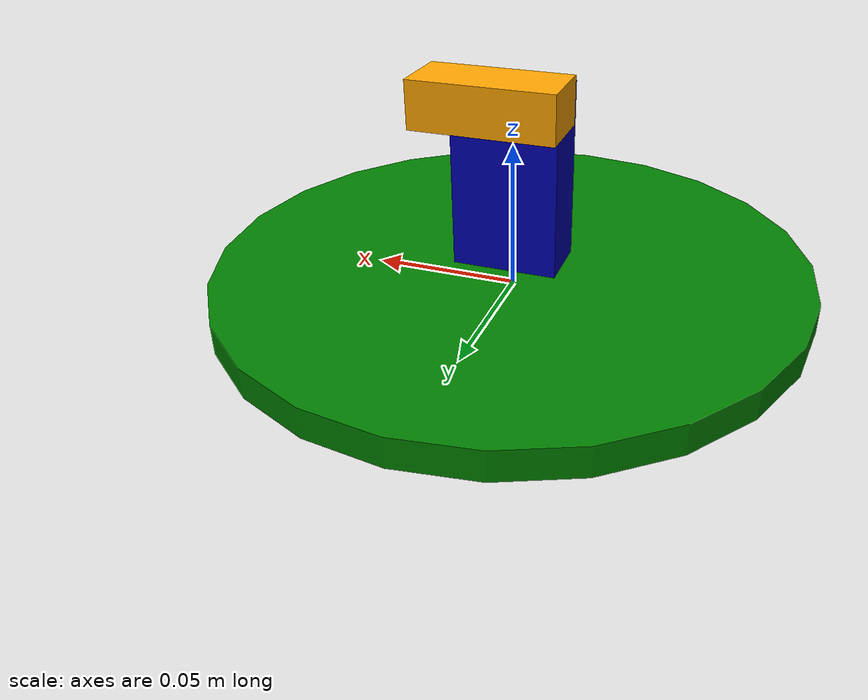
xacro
<?xml version="1.0"?>
<robot name="my_lidar" xmlns:xacro="http://www.ros.org/wiki/xacro">

    <xacro:include filename="common_properties.xacro"/>
    <xacro:include filename="robot_sim_gazebo.xacro"/>
    <xacro:include filename="ultrasonic.xacro"/>
    <xacro:include filename="gazebo_plugins.xacro"/>
</robot>

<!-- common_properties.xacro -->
<robot xmlns:xacro="http://www.ros.org/wiki/xacro">
<material name="green">
        <color rgba="0 0.5 0 1"/>
    </material>
    <material name="grey">
        <color rgba="0.5 0.5 0.5 1"/>
    </material>
    <material name="blue">
        <color rgba="0 0 0.7 1"/>
    </material>

    <material name="orange">
        <color rgba="1.0 0.647 0.0 1.0"/>
    </material>
    <material name="yellow">
        <color rgba="1.0 1.0 0.0 1.0"/>
    </material>

    <xacro:macro name="box_inertia" params="m x y z o_xyz o_rpy">
    <inertial>
        <origin xyz="${o_xyz}" rpy="${o_rpy}"/>
        <mass value="${m}"/>
        <inertia ixx="${m*(y*y + z*z)/12}" ixy="0" ixz="0"
                 iyy="${m*(x*x + z*z)/12}" iyz="0"
                 izz="${m*(y*y + x*x)/12}"/>
    </inertial>
    </xacro:macro>

    <xacro:macro name="cylinderical_inertia" params="m r l o_xyz o_rpy">
    <inertial>
        <origin xyz="${o_xyz}" rpy="${o_rpy}"/>
        <mass value="${m}"/>
        <inertia ixx="${m*(3*r*r + l*l)/12}" ixy="0" ixz="0"
                 iyy="${m*(3*r*r + l*l)/12}" iyz="0"
                 izz="${m*(r*r)/2}"/>
    </inertial>
    </xacro:macro>

    </robot>

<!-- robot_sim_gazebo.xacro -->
<robot xmlns:xacro="http://www.ros.org/wiki/xacro">

<xacro:property name="base_radius" value="0.1" />
<xacro:property name="base_length" value="0.01" />
<xacro:property name="sholder_height" value="0.06" />
<xacro:property name="sholder_length" value="0.035" />
<xacro:property name="sholder_width" value="0.02" />

<link name="base_footprint">
    </link>

<link name="base_link">
    <visual>
        <geometry>
            <cylinder radius="${base_radius}" length="${base_length}" />
        </geometry>
        <origin xyz="0 0 ${base_length/2.0}" rpy="0 0 0" />
        <material name="green" />
    </visual>

    <collision>
        <geometry>
            <cylinder radius="${base_radius}" length="${base_length}"/>
        </geometry>
        <origin xyz="0 0 ${base_length/2.0}" rpy="0 0 0"/>
    </collision>

    <xacro:cylinderical_inertia m="5" r="${base_radius}" l="${base_length}" o_xyz="0 0 ${base_length}" o_rpy="0 0 0"/>
</link>

<link name="sholder_link">
    <visual>
        <geometry>
            <box size="${sholder_length} ${sholder_width} ${sholder_height}"/>
        </geometry>
        <origin xyz="0 0 0" rpy="0 0 0"/>
        <material name="blue"/>
    </visual>

    <collision>
        <geometry>
            <box size="${sholder_length} ${sholder_width} ${sholder_height}"/>
        </geometry>
        <origin xyz="0 0 0" rpy="0 0 0"/>
    </collision>

    <xacro:box_inertia m="0.015" x="${sholder_length}" y="${sholder_width}" z="${sholder_height}" o_xyz="0 0 0" o_rpy="0 0 0"/>

</link>

<joint name="base_footprint_joint" type="fixed">
    <parent link="base_footprint"/>
    <child link="base_link"/>
    <origin xyz="0 0 0" rpy="0 0 0"/>
</joint>

<joint name="base_sholder_joint" type="revolute">
    <parent link="base_link"/>
    <child link="sholder_link"/>
    <origin xyz="0 0 ${(sholder_height/2.0) + base_length}" rpy="0 0 0"/>
    <axis xyz="0 0 1"/>
    <limit lower="0" upper="${2*pi}" effort="100" velocity="100"/>
    <dynamics damping="0.3" friction="0.3"/>
</joint>

</robot>

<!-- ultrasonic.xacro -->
<robot name="my_lidar" xmlns:xacro="http://www.ros.org/wiki/xacro">

<xacro:property name="sensor_length" value="0.02"/>
<xacro:property name="sensor_width" value="0.045"/>
<xacro:property name="sensor_height" value="0.015"/>

<link name="ultrasonic">
    <visual>
        <geometry>
            <box size="${sensor_length} ${sensor_width} ${sensor_height}"/>
        </geometry>
        <origin xyz="0 0 0" rpy="0 0 ${pi/2.0}"/>
        <material name="orange" />
    </visual>

    <collision>
        <geometry>
            <box size="${sensor_length} ${sensor_width} ${sensor_height}"/>
        </geometry>
        <origin xyz="0 0 0" rpy="0 0 ${pi/2.0}"/>
    </collision>

    <xacro:box_inertia m="0.01" x="${sensor_length}" y="${sensor_width}" z="${sensor_height}" o_xyz="0 0 0" o_rpy="0 0 ${pi/2.0}" />

</link>

<joint name="Sensor_sholder_joint" type="fixed">
    <parent link="sholder_link"/>
    <child link="ultrasonic"/>
    <origin xyz="0 ${(sensor_length/2.0)+(sholder_width/2.0)} ${sholder_height/2.0}" rpy="0 0 0"/>

</joint>

</robot>
